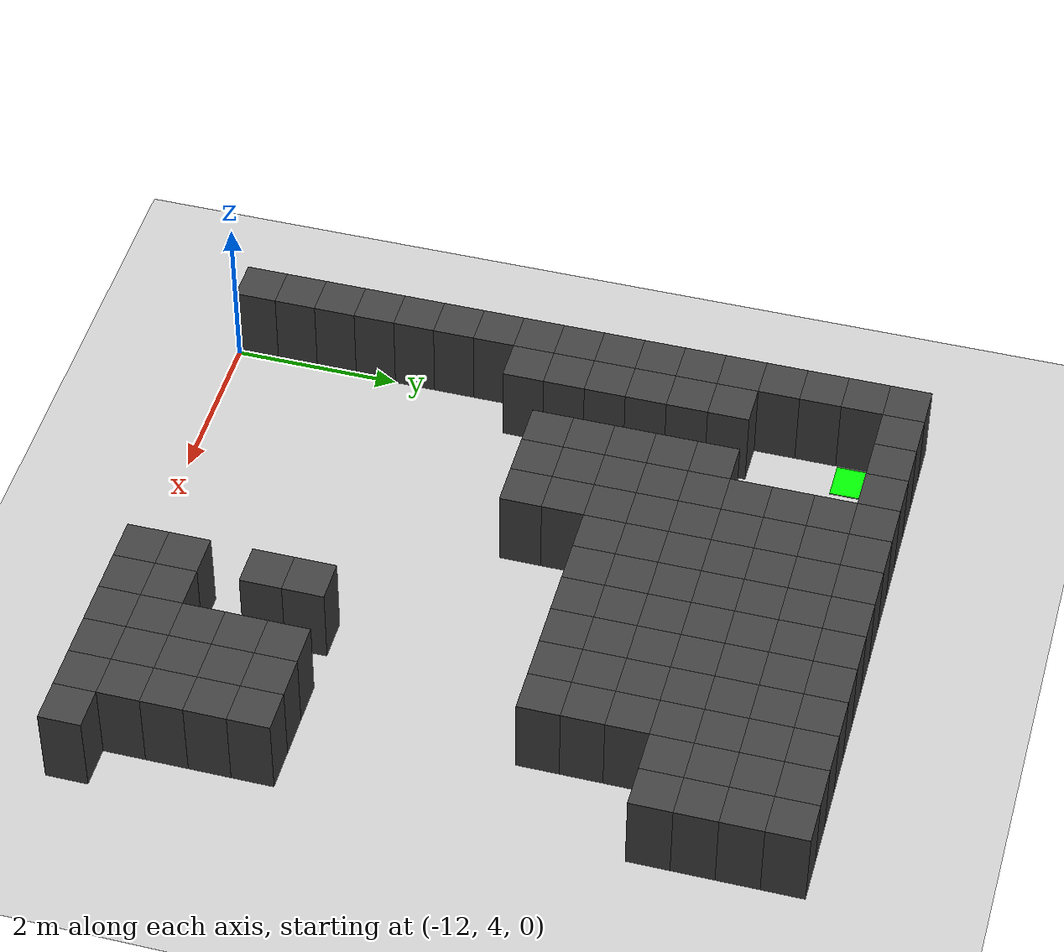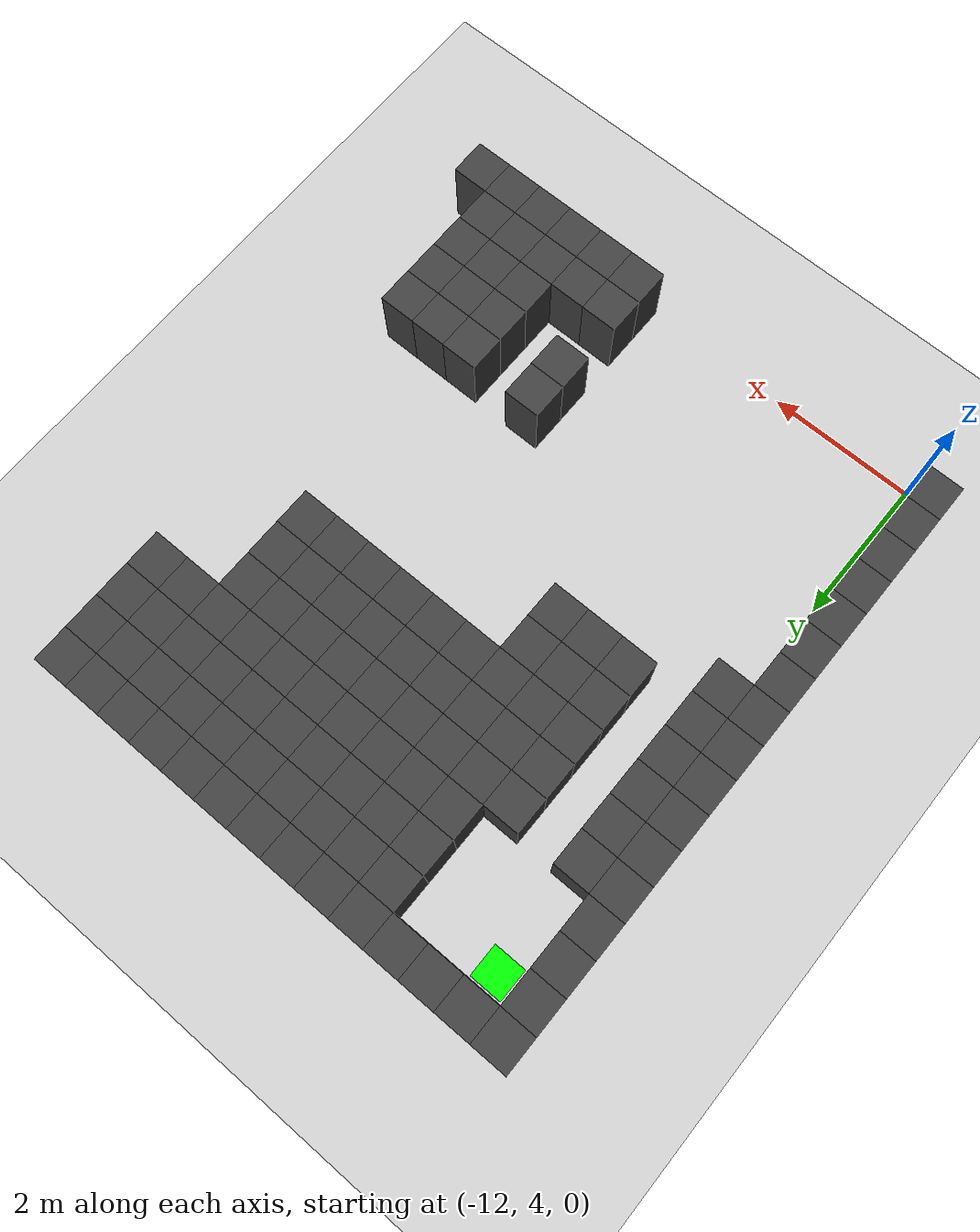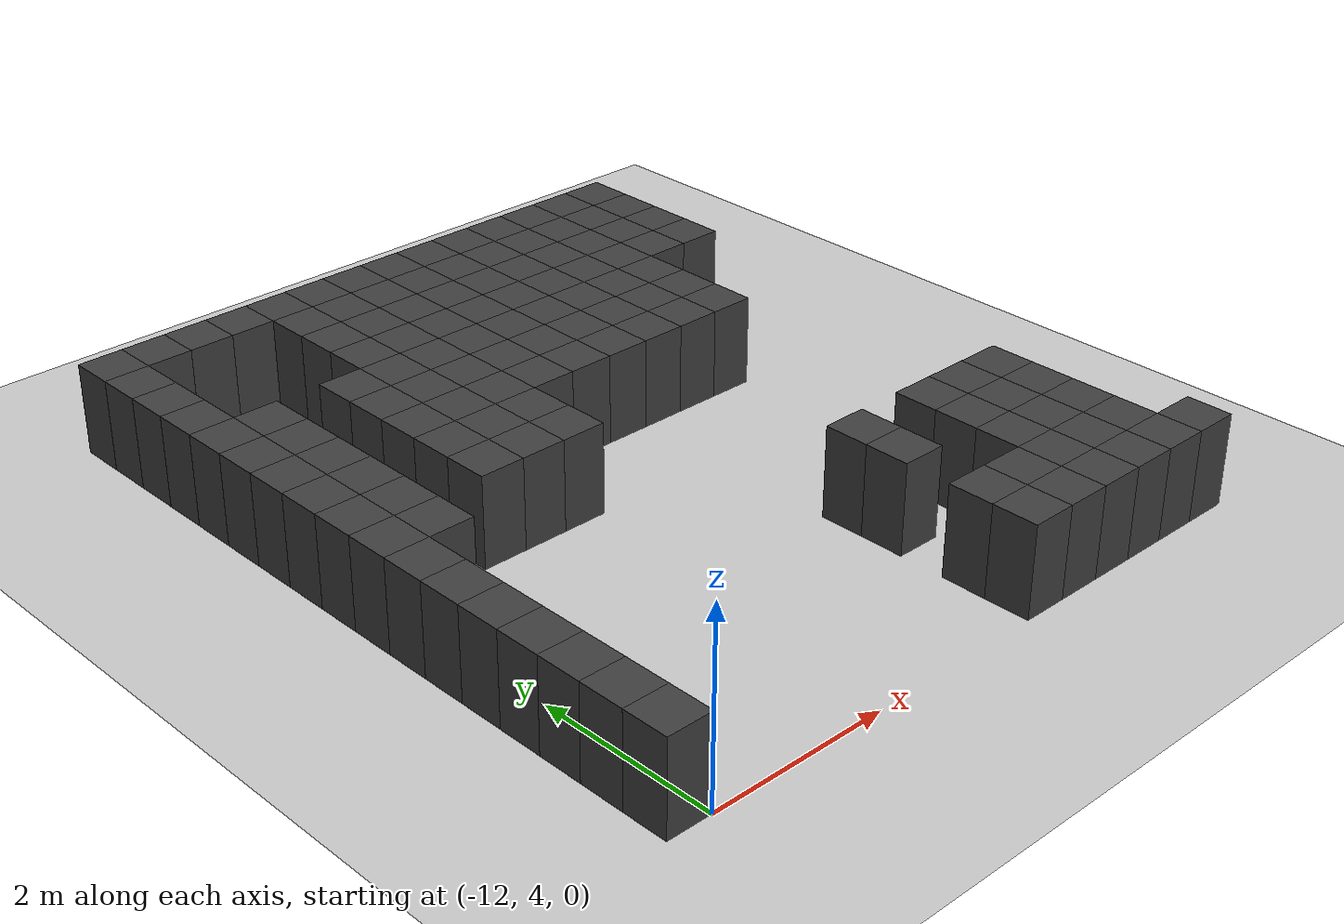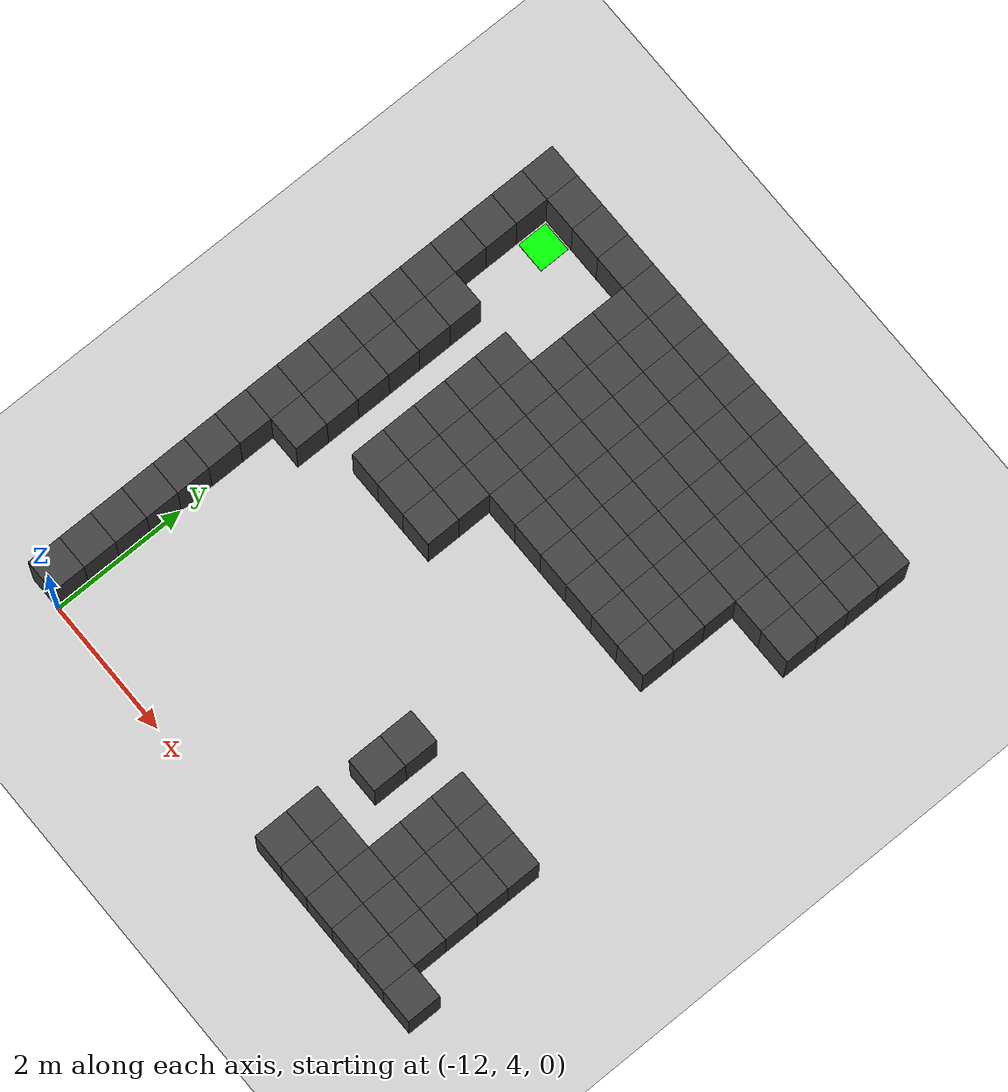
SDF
<sdf version="1.7">
 <world name="map_14547">
  <model name="ground_plane">
   <static>true</static>
   <link name="link">
    <collision name="collision">
     <geometry><plane><normal>0 0 1</normal><size>200 200</size></plane></geometry>
    </collision>
    <visual name="visual">
     <geometry><plane><normal>0 0 1</normal><size>200 200</size></plane></geometry>
     <material><ambient>0.8 0.8 0.8 1</ambient><diffuse>0.8 0.8 0.8 1</diffuse></material>
    </visual>
   </link>
  </model>
  <model name="maze_environment">
   <static>true</static>
   <link name="wall_0">
    <pose>-12.250 12.250 0.500 0 0 0</pose>
    <collision name="col"><geometry><box><size>0.5 0.5 1.0</size></box></geometry></collision>
    <visual name="vis">
     <geometry><box><size>0.5 0.5 1.0</size></box></geometry>
     <material><ambient>0.15 0.15 0.15 1</ambient><diffuse>0.25 0.25 0.25 1</diffuse></material>
    </visual>
   </link>
   <link name="wall_1">
    <pose>-11.750 12.250 0.500 0 0 0</pose>
    <collision name="col"><geometry><box><size>0.5 0.5 1.0</size></box></geometry></collision>
    <visual name="vis">
     <geometry><box><size>0.5 0.5 1.0</size></box></geometry>
     <material><ambient>0.15 0.15 0.15 1</ambient><diffuse>0.25 0.25 0.25 1</diffuse></material>
    </visual>
   </link>
   <link name="wall_2">
    <pose>-11.250 12.250 0.500 0 0 0</pose>
    <collision name="col"><geometry><box><size>0.5 0.5 1.0</size></box></geometry></collision>
    <visual name="vis">
     <geometry><box><size>0.5 0.5 1.0</size></box></geometry>
     <material><ambient>0.15 0.15 0.15 1</ambient><diffuse>0.25 0.25 0.25 1</diffuse></material>
    </visual>
   </link>
   <link name="wall_3">
    <pose>-10.750 12.250 0.500 0 0 0</pose>
    <collision name="col"><geometry><box><size>0.5 0.5 1.0</size></box></geometry></collision>
    <visual name="vis">
     <geometry><box><size>0.5 0.5 1.0</size></box></geometry>
     <material><ambient>0.15 0.15 0.15 1</ambient><diffuse>0.25 0.25 0.25 1</diffuse></material>
    </visual>
   </link>
   <link name="wall_4">
    <pose>-10.250 12.250 0.500 0 0 0</pose>
    <collision name="col"><geometry><box><size>0.5 0.5 1.0</size></box></geometry></collision>
    <visual name="vis">
     <geometry><box><size>0.5 0.5 1.0</size></box></geometry>
     <material><ambient>0.15 0.15 0.15 1</ambient><diffuse>0.25 0.25 0.25 1</diffuse></material>
    </visual>
   </link>
   <link name="wall_5">
    <pose>-9.750 12.250 0.500 0 0 0</pose>
    <collision name="col"><geometry><box><size>0.5 0.5 1.0</size></box></geometry></collision>
    <visual name="vis">
     <geometry><box><size>0.5 0.5 1.0</size></box></geometry>
     <material><ambient>0.15 0.15 0.15 1</ambient><diffuse>0.25 0.25 0.25 1</diffuse></material>
    </visual>
   </link>
   <link name="wall_6">
    <pose>-9.250 12.250 0.500 0 0 0</pose>
    <collision name="col"><geometry><box><size>0.5 0.5 1.0</size></box></geometry></collision>
    <visual name="vis">
     <geometry><box><size>0.5 0.5 1.0</size></box></geometry>
     <material><ambient>0.15 0.15 0.15 1</ambient><diffuse>0.25 0.25 0.25 1</diffuse></material>
    </visual>
   </link>
   <link name="wall_7">
    <pose>-8.750 12.250 0.500 0 0 0</pose>
    <collision name="col"><geometry><box><size>0.5 0.5 1.0</size></box></geometry></collision>
    <visual name="vis">
     <geometry><box><size>0.5 0.5 1.0</size></box></geometry>
     <material><ambient>0.15 0.15 0.15 1</ambient><diffuse>0.25 0.25 0.25 1</diffuse></material>
    </visual>
   </link>
   <link name="wall_8">
    <pose>-8.250 12.250 0.500 0 0 0</pose>
    <collision name="col"><geometry><box><size>0.5 0.5 1.0</size></box></geometry></collision>
    <visual name="vis">
     <geometry><box><size>0.5 0.5 1.0</size></box></geometry>
     <material><ambient>0.15 0.15 0.15 1</ambient><diffuse>0.25 0.25 0.25 1</diffuse></material>
    </visual>
   </link>
   <link name="wall_9">
    <pose>-7.750 12.250 0.500 0 0 0</pose>
    <collision name="col"><geometry><box><size>0.5 0.5 1.0</size></box></geometry></collision>
    <visual name="vis">
     <geometry><box><size>0.5 0.5 1.0</size></box></geometry>
     <material><ambient>0.15 0.15 0.15 1</ambient><diffuse>0.25 0.25 0.25 1</diffuse></material>
    </visual>
   </link>
   <link name="wall_10">
    <pose>-7.250 12.250 0.500 0 0 0</pose>
    <collision name="col"><geometry><box><size>0.5 0.5 1.0</size></box></geometry></collision>
    <visual name="vis">
     <geometry><box><size>0.5 0.5 1.0</size></box></geometry>
     <material><ambient>0.15 0.15 0.15 1</ambient><diffuse>0.25 0.25 0.25 1</diffuse></material>
    </visual>
   </link>
   <link name="wall_11">
    <pose>-6.750 12.250 0.500 0 0 0</pose>
    <collision name="col"><geometry><box><size>0.5 0.5 1.0</size></box></geometry></collision>
    <visual name="vis">
     <geometry><box><size>0.5 0.5 1.0</size></box></geometry>
     <material><ambient>0.15 0.15 0.15 1</ambient><diffuse>0.25 0.25 0.25 1</diffuse></material>
    </visual>
   </link>
   <link name="wall_12">
    <pose>-6.250 12.250 0.500 0 0 0</pose>
    <collision name="col"><geometry><box><size>0.5 0.5 1.0</size></box></geometry></collision>
    <visual name="vis">
     <geometry><box><size>0.5 0.5 1.0</size></box></geometry>
     <material><ambient>0.15 0.15 0.15 1</ambient><diffuse>0.25 0.25 0.25 1</diffuse></material>
    </visual>
   </link>
   <link name="wall_13">
    <pose>-5.750 12.250 0.500 0 0 0</pose>
    <collision name="col"><geometry><box><size>0.5 0.5 1.0</size></box></geometry></collision>
    <visual name="vis">
     <geometry><box><size>0.5 0.5 1.0</size></box></geometry>
     <material><ambient>0.15 0.15 0.15 1</ambient><diffuse>0.25 0.25 0.25 1</diffuse></material>
    </visual>
   </link>
   <link name="wall_50">
    <pose>-12.250 11.750 0.500 0 0 0</pose>
    <collision name="col"><geometry><box><size>0.5 0.5 1.0</size></box></geometry></collision>
    <visual name="vis">
     <geometry><box><size>0.5 0.5 1.0</size></box></geometry>
     <material><ambient>0.15 0.15 0.15 1</ambient><diffuse>0.25 0.25 0.25 1</diffuse></material>
    </visual>
   </link>
   <link name="wall_51">
    <pose>-10.250 11.750 0.500 0 0 0</pose>
    <collision name="col"><geometry><box><size>0.5 0.5 1.0</size></box></geometry></collision>
    <visual name="vis">
     <geometry><box><size>0.5 0.5 1.0</size></box></geometry>
     <material><ambient>0.15 0.15 0.15 1</ambient><diffuse>0.25 0.25 0.25 1</diffuse></material>
    </visual>
   </link>
   <link name="wall_52">
    <pose>-9.750 11.750 0.500 0 0 0</pose>
    <collision name="col"><geometry><box><size>0.5 0.5 1.0</size></box></geometry></collision>
    <visual name="vis">
     <geometry><box><size>0.5 0.5 1.0</size></box></geometry>
     <material><ambient>0.15 0.15 0.15 1</ambient><diffuse>0.25 0.25 0.25 1</diffuse></material>
    </visual>
   </link>
   <link name="wall_53">
    <pose>-9.250 11.750 0.500 0 0 0</pose>
    <collision name="col"><geometry><box><size>0.5 0.5 1.0</size></box></geometry></collision>
    <visual name="vis">
     <geometry><box><size>0.5 0.5 1.0</size></box></geometry>
     <material><ambient>0.15 0.15 0.15 1</ambient><diffuse>0.25 0.25 0.25 1</diffuse></material>
    </visual>
   </link>
   <link name="wall_54">
    <pose>-8.750 11.750 0.500 0 0 0</pose>
    <collision name="col"><geometry><box><size>0.5 0.5 1.0</size></box></geometry></collision>
    <visual name="vis">
     <geometry><box><size>0.5 0.5 1.0</size></box></geometry>
     <material><ambient>0.15 0.15 0.15 1</ambient><diffuse>0.25 0.25 0.25 1</diffuse></material>
    </visual>
   </link>
   <link name="wall_55">
    <pose>-8.250 11.750 0.500 0 0 0</pose>
    <collision name="col"><geometry><box><size>0.5 0.5 1.0</size></box></geometry></collision>
    <visual name="vis">
     <geometry><box><size>0.5 0.5 1.0</size></box></geometry>
     <material><ambient>0.15 0.15 0.15 1</ambient><diffuse>0.25 0.25 0.25 1</diffuse></material>
    </visual>
   </link>
   <link name="wall_56">
    <pose>-7.750 11.750 0.500 0 0 0</pose>
    <collision name="col"><geometry><box><size>0.5 0.5 1.0</size></box></geometry></collision>
    <visual name="vis">
     <geometry><box><size>0.5 0.5 1.0</size></box></geometry>
     <material><ambient>0.15 0.15 0.15 1</ambient><diffuse>0.25 0.25 0.25 1</diffuse></material>
    </visual>
   </link>
   <link name="wall_57">
    <pose>-7.250 11.750 0.500 0 0 0</pose>
    <collision name="col"><geometry><box><size>0.5 0.5 1.0</size></box></geometry></collision>
    <visual name="vis">
     <geometry><box><size>0.5 0.5 1.0</size></box></geometry>
     <material><ambient>0.15 0.15 0.15 1</ambient><diffuse>0.25 0.25 0.25 1</diffuse></material>
    </visual>
   </link>
   <link name="wall_58">
    <pose>-6.750 11.750 0.500 0 0 0</pose>
    <collision name="col"><geometry><box><size>0.5 0.5 1.0</size></box></geometry></collision>
    <visual name="vis">
     <geometry><box><size>0.5 0.5 1.0</size></box></geometry>
     <material><ambient>0.15 0.15 0.15 1</ambient><diffuse>0.25 0.25 0.25 1</diffuse></material>
    </visual>
   </link>
   <link name="wall_59">
    <pose>-6.250 11.750 0.500 0 0 0</pose>
    <collision name="col"><geometry><box><size>0.5 0.5 1.0</size></box></geometry></collision>
    <visual name="vis">
     <geometry><box><size>0.5 0.5 1.0</size></box></geometry>
     <material><ambient>0.15 0.15 0.15 1</ambient><diffuse>0.25 0.25 0.25 1</diffuse></material>
    </visual>
   </link>
   <link name="wall_60">
    <pose>-5.750 11.750 0.500 0 0 0</pose>
    <collision name="col"><geometry><box><size>0.5 0.5 1.0</size></box></geometry></collision>
    <visual name="vis">
     <geometry><box><size>0.5 0.5 1.0</size></box></geometry>
     <material><ambient>0.15 0.15 0.15 1</ambient><diffuse>0.25 0.25 0.25 1</diffuse></material>
    </visual>
   </link>
   <link name="wall_90">
    <pose>-12.250 11.250 0.500 0 0 0</pose>
    <collision name="col"><geometry><box><size>0.5 0.5 1.0</size></box></geometry></collision>
    <visual name="vis">
     <geometry><box><size>0.5 0.5 1.0</size></box></geometry>
     <material><ambient>0.15 0.15 0.15 1</ambient><diffuse>0.25 0.25 0.25 1</diffuse></material>
    </visual>
   </link>
   <link name="wall_91">
    <pose>-10.250 11.250 0.500 0 0 0</pose>
    <collision name="col"><geometry><box><size>0.5 0.5 1.0</size></box></geometry></collision>
    <visual name="vis">
     <geometry><box><size>0.5 0.5 1.0</size></box></geometry>
     <material><ambient>0.15 0.15 0.15 1</ambient><diffuse>0.25 0.25 0.25 1</diffuse></material>
    </visual>
   </link>
   <link name="wall_92">
    <pose>-9.750 11.250 0.500 0 0 0</pose>
    <collision name="col"><geometry><box><size>0.5 0.5 1.0</size></box></geometry></collision>
    <visual name="vis">
     <geometry><box><size>0.5 0.5 1.0</size></box></geometry>
     <material><ambient>0.15 0.15 0.15 1</ambient><diffuse>0.25 0.25 0.25 1</diffuse></material>
    </visual>
   </link>
   <link name="wall_93">
    <pose>-9.250 11.250 0.500 0 0 0</pose>
    <collision name="col"><geometry><box><size>0.5 0.5 1.0</size></box></geometry></collision>
    <visual name="vis">
     <geometry><box><size>0.5 0.5 1.0</size></box></geometry>
     <material><ambient>0.15 0.15 0.15 1</ambient><diffuse>0.25 0.25 0.25 1</diffuse></material>
    </visual>
   </link>
   <link name="wall_94">
    <pose>-8.750 11.250 0.500 0 0 0</pose>
    <collision name="col"><geometry><box><size>0.5 0.5 1.0</size></box></geometry></collision>
    <visual name="vis">
     <geometry><box><size>0.5 0.5 1.0</size></box></geometry>
     <material><ambient>0.15 0.15 0.15 1</ambient><diffuse>0.25 0.25 0.25 1</diffuse></material>
    </visual>
   </link>
   <link name="wall_95">
    <pose>-8.250 11.250 0.500 0 0 0</pose>
    <collision name="col"><geometry><box><size>0.5 0.5 1.0</size></box></geometry></collision>
    <visual name="vis">
     <geometry><box><size>0.5 0.5 1.0</size></box></geometry>
     <material><ambient>0.15 0.15 0.15 1</ambient><diffuse>0.25 0.25 0.25 1</diffuse></material>
    </visual>
   </link>
   <link name="wall_96">
    <pose>-7.750 11.250 0.500 0 0 0</pose>
    <collision name="col"><geometry><box><size>0.5 0.5 1.0</size></box></geometry></collision>
    <visual name="vis">
     <geometry><box><size>0.5 0.5 1.0</size></box></geometry>
     <material><ambient>0.15 0.15 0.15 1</ambient><diffuse>0.25 0.25 0.25 1</diffuse></material>
    </visual>
   </link>
   <link name="wall_97">
    <pose>-7.250 11.250 0.500 0 0 0</pose>
    <collision name="col"><geometry><box><size>0.5 0.5 1.0</size></box></geometry></collision>
    <visual name="vis">
     <geometry><box><size>0.5 0.5 1.0</size></box></geometry>
     <material><ambient>0.15 0.15 0.15 1</ambient><diffuse>0.25 0.25 0.25 1</diffuse></material>
    </visual>
   </link>
   <link name="wall_98">
    <pose>-6.750 11.250 0.500 0 0 0</pose>
    <collision name="col"><geometry><box><size>0.5 0.5 1.0</size></box></geometry></collision>
    <visual name="vis">
     <geometry><box><size>0.5 0.5 1.0</size></box></geometry>
     <material><ambient>0.15 0.15 0.15 1</ambient><diffuse>0.25 0.25 0.25 1</diffuse></material>
    </visual>
   </link>
   <link name="wall_99">
    <pose>-6.250 11.250 0.500 0 0 0</pose>
    <collision name="col"><geometry><box><size>0.5 0.5 1.0</size></box></geometry></collision>
    <visual name="vis">
     <geometry><box><size>0.5 0.5 1.0</size></box></geometry>
     <material><ambient>0.15 0.15 0.15 1</ambient><diffuse>0.25 0.25 0.25 1</diffuse></material>
    </visual>
   </link>
   <link name="wall_100">
    <pose>-5.750 11.250 0.500 0 0 0</pose>
    <collision name="col"><geometry><box><size>0.5 0.5 1.0</size></box></geometry></collision>
    <visual name="vis">
     <geometry><box><size>0.5 0.5 1.0</size></box></geometry>
     <material><ambient>0.15 0.15 0.15 1</ambient><diffuse>0.25 0.25 0.25 1</diffuse></material>
    </visual>
   </link>
   <link name="wall_122">
    <pose>-12.250 10.750 0.500 0 0 0</pose>
    <collision name="col"><geometry><box><size>0.5 0.5 1.0</size></box></geometry></collision>
    <visual name="vis">
     <geometry><box><size>0.5 0.5 1.0</size></box></geometry>
     <material><ambient>0.15 0.15 0.15 1</ambient><diffuse>0.25 0.25 0.25 1</diffuse></material>
    </visual>
   </link>
   <link name="wall_123">
    <pose>-10.250 10.750 0.500 0 0 0</pose>
    <collision name="col"><geometry><box><size>0.5 0.5 1.0</size></box></geometry></collision>
    <visual name="vis">
     <geometry><box><size>0.5 0.5 1.0</size></box></geometry>
     <material><ambient>0.15 0.15 0.15 1</ambient><diffuse>0.25 0.25 0.25 1</diffuse></material>
    </visual>
   </link>
   <link name="wall_124">
    <pose>-9.750 10.750 0.500 0 0 0</pose>
    <collision name="col"><geometry><box><size>0.5 0.5 1.0</size></box></geometry></collision>
    <visual name="vis">
     <geometry><box><size>0.5 0.5 1.0</size></box></geometry>
     <material><ambient>0.15 0.15 0.15 1</ambient><diffuse>0.25 0.25 0.25 1</diffuse></material>
    </visual>
   </link>
   <link name="wall_125">
    <pose>-9.250 10.750 0.500 0 0 0</pose>
    <collision name="col"><geometry><box><size>0.5 0.5 1.0</size></box></geometry></collision>
    <visual name="vis">
     <geometry><box><size>0.5 0.5 1.0</size></box></geometry>
     <material><ambient>0.15 0.15 0.15 1</ambient><diffuse>0.25 0.25 0.25 1</diffuse></material>
    </visual>
   </link>
   <link name="wall_126">
    <pose>-8.750 10.750 0.500 0 0 0</pose>
    <collision name="col"><geometry><box><size>0.5 0.5 1.0</size></box></geometry></collision>
    <visual name="vis">
     <geometry><box><size>0.5 0.5 1.0</size></box></geometry>
     <material><ambient>0.15 0.15 0.15 1</ambient><diffuse>0.25 0.25 0.25 1</diffuse></material>
    </visual>
   </link>
   <link name="wall_127">
    <pose>-8.250 10.750 0.500 0 0 0</pose>
    <collision name="col"><geometry><box><size>0.5 0.5 1.0</size></box></geometry></collision>
    <visual name="vis">
     <geometry><box><size>0.5 0.5 1.0</size></box></geometry>
     <material><ambient>0.15 0.15 0.15 1</ambient><diffuse>0.25 0.25 0.25 1</diffuse></material>
    </visual>
   </link>
   <link name="wall_128">
    <pose>-7.750 10.750 0.500 0 0 0</pose>
    <collision name="col"><geometry><box><size>0.5 0.5 1.0</size></box></geometry></collision>
    <visual name="vis">
     <geometry><box><size>0.5 0.5 1.0</size></box></geometry>
     <material><ambient>0.15 0.15 0.15 1</ambient><diffuse>0.25 0.25 0.25 1</diffuse></material>
    </visual>
   </link>
   <link name="wall_129">
    <pose>-7.250 10.750 0.500 0 0 0</pose>
    <collision name="col"><geometry><box><size>0.5 0.5 1.0</size></box></geometry></collision>
    <visual name="vis">
     <geometry><box><size>0.5 0.5 1.0</size></box></geometry>
     <material><ambient>0.15 0.15 0.15 1</ambient><diffuse>0.25 0.25 0.25 1</diffuse></material>
    </visual>
   </link>
   <link name="wall_130">
    <pose>-6.750 10.750 0.500 0 0 0</pose>
    <collision name="col"><geometry><box><size>0.5 0.5 1.0</size></box></geometry></collision>
    <visual name="vis">
     <geometry><box><size>0.5 0.5 1.0</size></box></geometry>
     <material><ambient>0.15 0.15 0.15 1</ambient><diffuse>0.25 0.25 0.25 1</diffuse></material>
    </visual>
   </link>
   <link name="wall_131">
    <pose>-6.250 10.750 0.500 0 0 0</pose>
    <collision name="col"><geometry><box><size>0.5 0.5 1.0</size></box></geometry></collision>
    <visual name="vis">
     <geometry><box><size>0.5 0.5 1.0</size></box></geometry>
     <material><ambient>0.15 0.15 0.15 1</ambient><diffuse>0.25 0.25 0.25 1</diffuse></material>
    </visual>
   </link>
   <link name="wall_132">
    <pose>-5.750 10.750 0.500 0 0 0</pose>
    <collision name="col"><geometry><box><size>0.5 0.5 1.0</size></box></geometry></collision>
    <visual name="vis">
     <geometry><box><size>0.5 0.5 1.0</size></box></geometry>
     <material><ambient>0.15 0.15 0.15 1</ambient><diffuse>0.25 0.25 0.25 1</diffuse></material>
    </visual>
   </link>
   <link name="wall_154">
    <pose>-12.250 10.250 0.500 0 0 0</pose>
    <collision name="col"><geometry><box><size>0.5 0.5 1.0</size></box></geometry></collision>
    <visual name="vis">
     <geometry><box><size>0.5 0.5 1.0</size></box></geometry>
     <material><ambient>0.15 0.15 0.15 1</ambient><diffuse>0.25 0.25 0.25 1</diffuse></material>
    </visual>
   </link>
   <link name="wall_155">
    <pose>-11.750 10.250 0.500 0 0 0</pose>
    <collision name="col"><geometry><box><size>0.5 0.5 1.0</size></box></geometry></collision>
    <visual name="vis">
     <geometry><box><size>0.5 0.5 1.0</size></box></geometry>
     <material><ambient>0.15 0.15 0.15 1</ambient><diffuse>0.25 0.25 0.25 1</diffuse></material>
    </visual>
   </link>
   <link name="wall_156">
    <pose>-10.750 10.250 0.500 0 0 0</pose>
    <collision name="col"><geometry><box><size>0.5 0.5 1.0</size></box></geometry></collision>
    <visual name="vis">
     <geometry><box><size>0.5 0.5 1.0</size></box></geometry>
     <material><ambient>0.15 0.15 0.15 1</ambient><diffuse>0.25 0.25 0.25 1</diffuse></material>
    </visual>
   </link>
   <link name="wall_157">
    <pose>-10.250 10.250 0.500 0 0 0</pose>
    <collision name="col"><geometry><box><size>0.5 0.5 1.0</size></box></geometry></collision>
    <visual name="vis">
     <geometry><box><size>0.5 0.5 1.0</size></box></geometry>
     <material><ambient>0.15 0.15 0.15 1</ambient><diffuse>0.25 0.25 0.25 1</diffuse></material>
    </visual>
   </link>
   <link name="wall_158">
    <pose>-9.750 10.250 0.500 0 0 0</pose>
    <collision name="col"><geometry><box><size>0.5 0.5 1.0</size></box></geometry></collision>
    <visual name="vis">
     <geometry><box><size>0.5 0.5 1.0</size></box></geometry>
     <material><ambient>0.15 0.15 0.15 1</ambient><diffuse>0.25 0.25 0.25 1</diffuse></material>
    </visual>
   </link>
   <link name="wall_159">
    <pose>-9.250 10.250 0.500 0 0 0</pose>
    <collision name="col"><geometry><box><size>0.5 0.5 1.0</size></box></geometry></collision>
    <visual name="vis">
     <geometry><box><size>0.5 0.5 1.0</size></box></geometry>
     <material><ambient>0.15 0.15 0.15 1</ambient><diffuse>0.25 0.25 0.25 1</diffuse></material>
    </visual>
   </link>
   <link name="wall_160">
    <pose>-8.750 10.250 0.500 0 0 0</pose>
    <collision name="col"><geometry><box><size>0.5 0.5 1.0</size></box></geometry></collision>
    <visual name="vis">
     <geometry><box><size>0.5 0.5 1.0</size></box></geometry>
     <material><ambient>0.15 0.15 0.15 1</ambient><diffuse>0.25 0.25 0.25 1</diffuse></material>
    </visual>
   </link>
   <link name="wall_161">
    <pose>-8.250 10.250 0.500 0 0 0</pose>
    <collision name="col"><geometry><box><size>0.5 0.5 1.0</size></box></geometry></collision>
    <visual name="vis">
     <geometry><box><size>0.5 0.5 1.0</size></box></geometry>
     <material><ambient>0.15 0.15 0.15 1</ambient><diffuse>0.25 0.25 0.25 1</diffuse></material>
    </visual>
   </link>
   <link name="wall_162">
    <pose>-7.750 10.250 0.500 0 0 0</pose>
    <collision name="col"><geometry><box><size>0.5 0.5 1.0</size></box></geometry></collision>
    <visual name="vis">
     <geometry><box><size>0.5 0.5 1.0</size></box></geometry>
     <material><ambient>0.15 0.15 0.15 1</ambient><diffuse>0.25 0.25 0.25 1</diffuse></material>
    </visual>
   </link>
   <link name="wall_163">
    <pose>-7.250 10.250 0.500 0 0 0</pose>
    <collision name="col"><geometry><box><size>0.5 0.5 1.0</size></box></geometry></collision>
    <visual name="vis">
     <geometry><box><size>0.5 0.5 1.0</size></box></geometry>
     <material><ambient>0.15 0.15 0.15 1</ambient><diffuse>0.25 0.25 0.25 1</diffuse></material>
    </visual>
   </link>
   <link name="wall_164">
    <pose>-6.750 10.250 0.500 0 0 0</pose>
    <collision name="col"><geometry><box><size>0.5 0.5 1.0</size></box></geometry></collision>
    <visual name="vis">
     <geometry><box><size>0.5 0.5 1.0</size></box></geometry>
     <material><ambient>0.15 0.15 0.15 1</ambient><diffuse>0.25 0.25 0.25 1</diffuse></material>
    </visual>
   </link>
   <link name="wall_183">
    <pose>-12.250 9.750 0.500 0 0 0</pose>
    <collision name="col"><geometry><box><size>0.5 0.5 1.0</size></box></geometry></collision>
    <visual name="vis">
     <geometry><box><size>0.5 0.5 1.0</size></box></geometry>
     <material><ambient>0.15 0.15 0.15 1</ambient><diffuse>0.25 0.25 0.25 1</diffuse></material>
    </visual>
   </link>
   <link name="wall_184">
    <pose>-11.750 9.750 0.500 0 0 0</pose>
    <collision name="col"><geometry><box><size>0.5 0.5 1.0</size></box></geometry></collision>
    <visual name="vis">
     <geometry><box><size>0.5 0.5 1.0</size></box></geometry>
     <material><ambient>0.15 0.15 0.15 1</ambient><diffuse>0.25 0.25 0.25 1</diffuse></material>
    </visual>
   </link>
   <link name="wall_185">
    <pose>-10.750 9.750 0.500 0 0 0</pose>
    <collision name="col"><geometry><box><size>0.5 0.5 1.0</size></box></geometry></collision>
    <visual name="vis">
     <geometry><box><size>0.5 0.5 1.0</size></box></geometry>
     <material><ambient>0.15 0.15 0.15 1</ambient><diffuse>0.25 0.25 0.25 1</diffuse></material>
    </visual>
   </link>
   <link name="wall_186">
    <pose>-10.250 9.750 0.500 0 0 0</pose>
    <collision name="col"><geometry><box><size>0.5 0.5 1.0</size></box></geometry></collision>
    <visual name="vis">
     <geometry><box><size>0.5 0.5 1.0</size></box></geometry>
     <material><ambient>0.15 0.15 0.15 1</ambient><diffuse>0.25 0.25 0.25 1</diffuse></material>
    </visual>
   </link>
   <link name="wall_187">
    <pose>-9.750 9.750 0.500 0 0 0</pose>
    <collision name="col"><geometry><box><size>0.5 0.5 1.0</size></box></geometry></collision>
    <visual name="vis">
     <geometry><box><size>0.5 0.5 1.0</size></box></geometry>
     <material><ambient>0.15 0.15 0.15 1</ambient><diffuse>0.25 0.25 0.25 1</diffuse></material>
    </visual>
   </link>
   <link name="wall_188">
    <pose>-9.250 9.750 0.500 0 0 0</pose>
    <collision name="col"><geometry><box><size>0.5 0.5 1.0</size></box></geometry></collision>
    <visual name="vis">
     <geometry><box><size>0.5 0.5 1.0</size></box></geometry>
     <material><ambient>0.15 0.15 0.15 1</ambient><diffuse>0.25 0.25 0.25 1</diffuse></material>
    </visual>
   </link>
   <link name="wall_189">
    <pose>-8.750 9.750 0.500 0 0 0</pose>
    <collision name="col"><geometry><box><size>0.5 0.5 1.0</size></box></geometry></collision>
    <visual name="vis">
     <geometry><box><size>0.5 0.5 1.0</size></box></geometry>
     <material><ambient>0.15 0.15 0.15 1</ambient><diffuse>0.25 0.25 0.25 1</diffuse></material>
    </visual>
   </link>
   <link name="wall_190">
    <pose>-8.250 9.750 0.500 0 0 0</pose>
    <collision name="col"><geometry><box><size>0.5 0.5 1.0</size></box></geometry></collision>
    <visual name="vis">
     <geometry><box><size>0.5 0.5 1.0</size></box></geometry>
     <material><ambient>0.15 0.15 0.15 1</ambient><diffuse>0.25 0.25 0.25 1</diffuse></material>
    </visual>
   </link>
   <link name="wall_191">
    <pose>-7.750 9.750 0.500 0 0 0</pose>
    <collision name="col"><geometry><box><size>0.5 0.5 1.0</size></box></geometry></collision>
    <visual name="vis">
     <geometry><box><size>0.5 0.5 1.0</size></box></geometry>
     <material><ambient>0.15 0.15 0.15 1</ambient><diffuse>0.25 0.25 0.25 1</diffuse></material>
    </visual>
   </link>
   <link name="wall_192">
    <pose>-7.250 9.750 0.500 0 0 0</pose>
    <collision name="col"><geometry><box><size>0.5 0.5 1.0</size></box></geometry></collision>
    <visual name="vis">
     <geometry><box><size>0.5 0.5 1.0</size></box></geometry>
     <material><ambient>0.15 0.15 0.15 1</ambient><diffuse>0.25 0.25 0.25 1</diffuse></material>
    </visual>
   </link>
   <link name="wall_193">
    <pose>-6.750 9.750 0.500 0 0 0</pose>
    <collision name="col"><geometry><box><size>0.5 0.5 1.0</size></box></geometry></collision>
    <visual name="vis">
     <geometry><box><size>0.5 0.5 1.0</size></box></geometry>
     <material><ambient>0.15 0.15 0.15 1</ambient><diffuse>0.25 0.25 0.25 1</diffuse></material>
    </visual>
   </link>
   <link name="wall_212">
    <pose>-12.250 9.250 0.500 0 0 0</pose>
    <collision name="col"><geometry><box><size>0.5 0.5 1.0</size></box></geometry></collision>
    <visual name="vis">
     <geometry><box><size>0.5 0.5 1.0</size></box></geometry>
     <material><ambient>0.15 0.15 0.15 1</ambient><diffuse>0.25 0.25 0.25 1</diffuse></material>
    </visual>
   </link>
   <link name="wall_213">
    <pose>-11.750 9.250 0.500 0 0 0</pose>
    <collision name="col"><geometry><box><size>0.5 0.5 1.0</size></box></geometry></collision>
    <visual name="vis">
     <geometry><box><size>0.5 0.5 1.0</size></box></geometry>
     <material><ambient>0.15 0.15 0.15 1</ambient><diffuse>0.25 0.25 0.25 1</diffuse></material>
    </visual>
   </link>
   <link name="wall_214">
    <pose>-10.750 9.250 0.500 0 0 0</pose>
    <collision name="col"><geometry><box><size>0.5 0.5 1.0</size></box></geometry></collision>
    <visual name="vis">
     <geometry><box><size>0.5 0.5 1.0</size></box></geometry>
     <material><ambient>0.15 0.15 0.15 1</ambient><diffuse>0.25 0.25 0.25 1</diffuse></material>
    </visual>
   </link>
   <link name="wall_215">
    <pose>-10.250 9.250 0.500 0 0 0</pose>
    <collision name="col"><geometry><box><size>0.5 0.5 1.0</size></box></geometry></collision>
    <visual name="vis">
     <geometry><box><size>0.5 0.5 1.0</size></box></geometry>
     <material><ambient>0.15 0.15 0.15 1</ambient><diffuse>0.25 0.25 0.25 1</diffuse></material>
    </visual>
   </link>
   <link name="wall_216">
    <pose>-9.750 9.250 0.500 0 0 0</pose>
    <collision name="col"><geometry><box><size>0.5 0.5 1.0</size></box></geometry></collision>
    <visual name="vis">
     <geometry><box><size>0.5 0.5 1.0</size></box></geometry>
     <material><ambient>0.15 0.15 0.15 1</ambient><diffuse>0.25 0.25 0.25 1</diffuse></material>
    </visual>
   </link>
   <link name="wall_217">
    <pose>-9.250 9.250 0.500 0 0 0</pose>
    <collision name="col"><geometry><box><size>0.5 0.5 1.0</size></box></geometry></collision>
    <visual name="vis">
     <geometry><box><size>0.5 0.5 1.0</size></box></geometry>
     <material><ambient>0.15 0.15 0.15 1</ambient><diffuse>0.25 0.25 0.25 1</diffuse></material>
    </visual>
   </link>
   <link name="wall_218">
    <pose>-8.750 9.250 0.500 0 0 0</pose>
    <collision name="col"><geometry><box><size>0.5 0.5 1.0</size></box></geometry></collision>
    <visual name="vis">
     <geometry><box><size>0.5 0.5 1.0</size></box></geometry>
     <material><ambient>0.15 0.15 0.15 1</ambient><diffuse>0.25 0.25 0.25 1</diffuse></material>
    </visual>
   </link>
   <link name="wall_219">
    <pose>-8.250 9.250 0.500 0 0 0</pose>
    <collision name="col"><geometry><box><size>0.5 0.5 1.0</size></box></geometry></collision>
    <visual name="vis">
     <geometry><box><size>0.5 0.5 1.0</size></box></geometry>
     <material><ambient>0.15 0.15 0.15 1</ambient><diffuse>0.25 0.25 0.25 1</diffuse></material>
    </visual>
   </link>
   <link name="wall_220">
    <pose>-7.750 9.250 0.500 0 0 0</pose>
    <collision name="col"><geometry><box><size>0.5 0.5 1.0</size></box></geometry></collision>
    <visual name="vis">
     <geometry><box><size>0.5 0.5 1.0</size></box></geometry>
     <material><ambient>0.15 0.15 0.15 1</ambient><diffuse>0.25 0.25 0.25 1</diffuse></material>
    </visual>
   </link>
   <link name="wall_221">
    <pose>-7.250 9.250 0.500 0 0 0</pose>
    <collision name="col"><geometry><box><size>0.5 0.5 1.0</size></box></geometry></collision>
    <visual name="vis">
     <geometry><box><size>0.5 0.5 1.0</size></box></geometry>
     <material><ambient>0.15 0.15 0.15 1</ambient><diffuse>0.25 0.25 0.25 1</diffuse></material>
    </visual>
   </link>
   <link name="wall_222">
    <pose>-6.750 9.250 0.500 0 0 0</pose>
    <collision name="col"><geometry><box><size>0.5 0.5 1.0</size></box></geometry></collision>
    <visual name="vis">
     <geometry><box><size>0.5 0.5 1.0</size></box></geometry>
     <material><ambient>0.15 0.15 0.15 1</ambient><diffuse>0.25 0.25 0.25 1</diffuse></material>
    </visual>
   </link>
   <link name="wall_248">
    <pose>-12.250 8.750 0.500 0 0 0</pose>
    <collision name="col"><geometry><box><size>0.5 0.5 1.0</size></box></geometry></collision>
    <visual name="vis">
     <geometry><box><size>0.5 0.5 1.0</size></box></geometry>
     <material><ambient>0.15 0.15 0.15 1</ambient><diffuse>0.25 0.25 0.25 1</diffuse></material>
    </visual>
   </link>
   <link name="wall_249">
    <pose>-11.750 8.750 0.500 0 0 0</pose>
    <collision name="col"><geometry><box><size>0.5 0.5 1.0</size></box></geometry></collision>
    <visual name="vis">
     <geometry><box><size>0.5 0.5 1.0</size></box></geometry>
     <material><ambient>0.15 0.15 0.15 1</ambient><diffuse>0.25 0.25 0.25 1</diffuse></material>
    </visual>
   </link>
   <link name="wall_250">
    <pose>-10.750 8.750 0.500 0 0 0</pose>
    <collision name="col"><geometry><box><size>0.5 0.5 1.0</size></box></geometry></collision>
    <visual name="vis">
     <geometry><box><size>0.5 0.5 1.0</size></box></geometry>
     <material><ambient>0.15 0.15 0.15 1</ambient><diffuse>0.25 0.25 0.25 1</diffuse></material>
    </visual>
   </link>
   <link name="wall_251">
    <pose>-10.250 8.750 0.500 0 0 0</pose>
    <collision name="col"><geometry><box><size>0.5 0.5 1.0</size></box></geometry></collision>
    <visual name="vis">
     <geometry><box><size>0.5 0.5 1.0</size></box></geometry>
     <material><ambient>0.15 0.15 0.15 1</ambient><diffuse>0.25 0.25 0.25 1</diffuse></material>
    </visual>
   </link>
   <link name="wall_252">
    <pose>-9.750 8.750 0.500 0 0 0</pose>
    <collision name="col"><geometry><box><size>0.5 0.5 1.0</size></box></geometry></collision>
    <visual name="vis">
     <geometry><box><size>0.5 0.5 1.0</size></box></geometry>
     <material><ambient>0.15 0.15 0.15 1</ambient><diffuse>0.25 0.25 0.25 1</diffuse></material>
    </visual>
   </link>
   <link name="wall_270">
    <pose>-12.250 8.250 0.500 0 0 0</pose>
    <collision name="col"><geometry><box><size>0.5 0.5 1.0</size></box></geometry></collision>
    <visual name="vis">
     <geometry><box><size>0.5 0.5 1.0</size></box></geometry>
     <material><ambient>0.15 0.15 0.15 1</ambient><diffuse>0.25 0.25 0.25 1</diffuse></material>
    </visual>
   </link>
   <link name="wall_271">
    <pose>-11.750 8.250 0.500 0 0 0</pose>
    <collision name="col"><geometry><box><size>0.5 0.5 1.0</size></box></geometry></collision>
    <visual name="vis">
     <geometry><box><size>0.5 0.5 1.0</size></box></geometry>
     <material><ambient>0.15 0.15 0.15 1</ambient><diffuse>0.25 0.25 0.25 1</diffuse></material>
    </visual>
   </link>
   <link name="wall_272">
    <pose>-10.750 8.250 0.500 0 0 0</pose>
    <collision name="col"><geometry><box><size>0.5 0.5 1.0</size></box></geometry></collision>
    <visual name="vis">
     <geometry><box><size>0.5 0.5 1.0</size></box></geometry>
     <material><ambient>0.15 0.15 0.15 1</ambient><diffuse>0.25 0.25 0.25 1</diffuse></material>
    </visual>
   </link>
   <link name="wall_273">
    <pose>-10.250 8.250 0.500 0 0 0</pose>
    <collision name="col"><geometry><box><size>0.5 0.5 1.0</size></box></geometry></collision>
    <visual name="vis">
     <geometry><box><size>0.5 0.5 1.0</size></box></geometry>
     <material><ambient>0.15 0.15 0.15 1</ambient><diffuse>0.25 0.25 0.25 1</diffuse></material>
    </visual>
   </link>
   <link name="wall_274">
    <pose>-9.750 8.250 0.500 0 0 0</pose>
    <collision name="col"><geometry><box><size>0.5 0.5 1.0</size></box></geometry></collision>
    <visual name="vis">
     <geometry><box><size>0.5 0.5 1.0</size></box></geometry>
     <material><ambient>0.15 0.15 0.15 1</ambient><diffuse>0.25 0.25 0.25 1</diffuse></material>
    </visual>
   </link>
   <link name="wall_292">
    <pose>-12.250 7.750 0.500 0 0 0</pose>
    <collision name="col"><geometry><box><size>0.5 0.5 1.0</size></box></geometry></collision>
    <visual name="vis">
     <geometry><box><size>0.5 0.5 1.0</size></box></geometry>
     <material><ambient>0.15 0.15 0.15 1</ambient><diffuse>0.25 0.25 0.25 1</diffuse></material>
    </visual>
   </link>
   <link name="wall_293">
    <pose>-11.750 7.750 0.500 0 0 0</pose>
    <collision name="col"><geometry><box><size>0.5 0.5 1.0</size></box></geometry></collision>
    <visual name="vis">
     <geometry><box><size>0.5 0.5 1.0</size></box></geometry>
     <material><ambient>0.15 0.15 0.15 1</ambient><diffuse>0.25 0.25 0.25 1</diffuse></material>
    </visual>
   </link>
   <link name="wall_317">
    <pose>-12.250 7.250 0.500 0 0 0</pose>
    <collision name="col"><geometry><box><size>0.5 0.5 1.0</size></box></geometry></collision>
    <visual name="vis">
     <geometry><box><size>0.5 0.5 1.0</size></box></geometry>
     <material><ambient>0.15 0.15 0.15 1</ambient><diffuse>0.25 0.25 0.25 1</diffuse></material>
    </visual>
   </link>
   <link name="wall_341">
    <pose>-12.250 6.750 0.500 0 0 0</pose>
    <collision name="col"><geometry><box><size>0.5 0.5 1.0</size></box></geometry></collision>
    <visual name="vis">
     <geometry><box><size>0.5 0.5 1.0</size></box></geometry>
     <material><ambient>0.15 0.15 0.15 1</ambient><diffuse>0.25 0.25 0.25 1</diffuse></material>
    </visual>
   </link>
   <link name="wall_365">
    <pose>-12.250 6.250 0.500 0 0 0</pose>
    <collision name="col"><geometry><box><size>0.5 0.5 1.0</size></box></geometry></collision>
    <visual name="vis">
     <geometry><box><size>0.5 0.5 1.0</size></box></geometry>
     <material><ambient>0.15 0.15 0.15 1</ambient><diffuse>0.25 0.25 0.25 1</diffuse></material>
    </visual>
   </link>
   <link name="wall_366">
    <pose>-7.750 6.250 0.500 0 0 0</pose>
    <collision name="col"><geometry><box><size>0.5 0.5 1.0</size></box></geometry></collision>
    <visual name="vis">
     <geometry><box><size>0.5 0.5 1.0</size></box></geometry>
     <material><ambient>0.15 0.15 0.15 1</ambient><diffuse>0.25 0.25 0.25 1</diffuse></material>
    </visual>
   </link>
   <link name="wall_367">
    <pose>-6.750 6.250 0.500 0 0 0</pose>
    <collision name="col"><geometry><box><size>0.5 0.5 1.0</size></box></geometry></collision>
    <visual name="vis">
     <geometry><box><size>0.5 0.5 1.0</size></box></geometry>
     <material><ambient>0.15 0.15 0.15 1</ambient><diffuse>0.25 0.25 0.25 1</diffuse></material>
    </visual>
   </link>
   <link name="wall_368">
    <pose>-6.250 6.250 0.500 0 0 0</pose>
    <collision name="col"><geometry><box><size>0.5 0.5 1.0</size></box></geometry></collision>
    <visual name="vis">
     <geometry><box><size>0.5 0.5 1.0</size></box></geometry>
     <material><ambient>0.15 0.15 0.15 1</ambient><diffuse>0.25 0.25 0.25 1</diffuse></material>
    </visual>
   </link>
   <link name="wall_369">
    <pose>-5.750 6.250 0.500 0 0 0</pose>
    <collision name="col"><geometry><box><size>0.5 0.5 1.0</size></box></geometry></collision>
    <visual name="vis">
     <geometry><box><size>0.5 0.5 1.0</size></box></geometry>
     <material><ambient>0.15 0.15 0.15 1</ambient><diffuse>0.25 0.25 0.25 1</diffuse></material>
    </visual>
   </link>
   <link name="wall_389">
    <pose>-12.250 5.750 0.500 0 0 0</pose>
    <collision name="col"><geometry><box><size>0.5 0.5 1.0</size></box></geometry></collision>
    <visual name="vis">
     <geometry><box><size>0.5 0.5 1.0</size></box></geometry>
     <material><ambient>0.15 0.15 0.15 1</ambient><diffuse>0.25 0.25 0.25 1</diffuse></material>
    </visual>
   </link>
   <link name="wall_390">
    <pose>-7.750 5.750 0.500 0 0 0</pose>
    <collision name="col"><geometry><box><size>0.5 0.5 1.0</size></box></geometry></collision>
    <visual name="vis">
     <geometry><box><size>0.5 0.5 1.0</size></box></geometry>
     <material><ambient>0.15 0.15 0.15 1</ambient><diffuse>0.25 0.25 0.25 1</diffuse></material>
    </visual>
   </link>
   <link name="wall_391">
    <pose>-6.750 5.750 0.500 0 0 0</pose>
    <collision name="col"><geometry><box><size>0.5 0.5 1.0</size></box></geometry></collision>
    <visual name="vis">
     <geometry><box><size>0.5 0.5 1.0</size></box></geometry>
     <material><ambient>0.15 0.15 0.15 1</ambient><diffuse>0.25 0.25 0.25 1</diffuse></material>
    </visual>
   </link>
   <link name="wall_392">
    <pose>-6.250 5.750 0.500 0 0 0</pose>
    <collision name="col"><geometry><box><size>0.5 0.5 1.0</size></box></geometry></collision>
    <visual name="vis">
     <geometry><box><size>0.5 0.5 1.0</size></box></geometry>
     <material><ambient>0.15 0.15 0.15 1</ambient><diffuse>0.25 0.25 0.25 1</diffuse></material>
    </visual>
   </link>
   <link name="wall_393">
    <pose>-5.750 5.750 0.500 0 0 0</pose>
    <collision name="col"><geometry><box><size>0.5 0.5 1.0</size></box></geometry></collision>
    <visual name="vis">
     <geometry><box><size>0.5 0.5 1.0</size></box></geometry>
     <material><ambient>0.15 0.15 0.15 1</ambient><diffuse>0.25 0.25 0.25 1</diffuse></material>
    </visual>
   </link>
   <link name="wall_418">
    <pose>-12.250 5.250 0.500 0 0 0</pose>
    <collision name="col"><geometry><box><size>0.5 0.5 1.0</size></box></geometry></collision>
    <visual name="vis">
     <geometry><box><size>0.5 0.5 1.0</size></box></geometry>
     <material><ambient>0.15 0.15 0.15 1</ambient><diffuse>0.25 0.25 0.25 1</diffuse></material>
    </visual>
   </link>
   <link name="wall_419">
    <pose>-6.750 5.250 0.500 0 0 0</pose>
    <collision name="col"><geometry><box><size>0.5 0.5 1.0</size></box></geometry></collision>
    <visual name="vis">
     <geometry><box><size>0.5 0.5 1.0</size></box></geometry>
     <material><ambient>0.15 0.15 0.15 1</ambient><diffuse>0.25 0.25 0.25 1</diffuse></material>
    </visual>
   </link>
   <link name="wall_420">
    <pose>-6.250 5.250 0.500 0 0 0</pose>
    <collision name="col"><geometry><box><size>0.5 0.5 1.0</size></box></geometry></collision>
    <visual name="vis">
     <geometry><box><size>0.5 0.5 1.0</size></box></geometry>
     <material><ambient>0.15 0.15 0.15 1</ambient><diffuse>0.25 0.25 0.25 1</diffuse></material>
    </visual>
   </link>
   <link name="wall_421">
    <pose>-5.750 5.250 0.500 0 0 0</pose>
    <collision name="col"><geometry><box><size>0.5 0.5 1.0</size></box></geometry></collision>
    <visual name="vis">
     <geometry><box><size>0.5 0.5 1.0</size></box></geometry>
     <material><ambient>0.15 0.15 0.15 1</ambient><diffuse>0.25 0.25 0.25 1</diffuse></material>
    </visual>
   </link>
   <link name="wall_446">
    <pose>-12.250 4.750 0.500 0 0 0</pose>
    <collision name="col"><geometry><box><size>0.5 0.5 1.0</size></box></geometry></collision>
    <visual name="vis">
     <geometry><box><size>0.5 0.5 1.0</size></box></geometry>
     <material><ambient>0.15 0.15 0.15 1</ambient><diffuse>0.25 0.25 0.25 1</diffuse></material>
    </visual>
   </link>
   <link name="wall_447">
    <pose>-7.750 4.750 0.500 0 0 0</pose>
    <collision name="col"><geometry><box><size>0.5 0.5 1.0</size></box></geometry></collision>
    <visual name="vis">
     <geometry><box><size>0.5 0.5 1.0</size></box></geometry>
     <material><ambient>0.15 0.15 0.15 1</ambient><diffuse>0.25 0.25 0.25 1</diffuse></material>
    </visual>
   </link>
   <link name="wall_448">
    <pose>-7.250 4.750 0.500 0 0 0</pose>
    <collision name="col"><geometry><box><size>0.5 0.5 1.0</size></box></geometry></collision>
    <visual name="vis">
     <geometry><box><size>0.5 0.5 1.0</size></box></geometry>
     <material><ambient>0.15 0.15 0.15 1</ambient><diffuse>0.25 0.25 0.25 1</diffuse></material>
    </visual>
   </link>
   <link name="wall_449">
    <pose>-6.750 4.750 0.500 0 0 0</pose>
    <collision name="col"><geometry><box><size>0.5 0.5 1.0</size></box></geometry></collision>
    <visual name="vis">
     <geometry><box><size>0.5 0.5 1.0</size></box></geometry>
     <material><ambient>0.15 0.15 0.15 1</ambient><diffuse>0.25 0.25 0.25 1</diffuse></material>
    </visual>
   </link>
   <link name="wall_450">
    <pose>-6.250 4.750 0.500 0 0 0</pose>
    <collision name="col"><geometry><box><size>0.5 0.5 1.0</size></box></geometry></collision>
    <visual name="vis">
     <geometry><box><size>0.5 0.5 1.0</size></box></geometry>
     <material><ambient>0.15 0.15 0.15 1</ambient><diffuse>0.25 0.25 0.25 1</diffuse></material>
    </visual>
   </link>
   <link name="wall_451">
    <pose>-5.750 4.750 0.500 0 0 0</pose>
    <collision name="col"><geometry><box><size>0.5 0.5 1.0</size></box></geometry></collision>
    <visual name="vis">
     <geometry><box><size>0.5 0.5 1.0</size></box></geometry>
     <material><ambient>0.15 0.15 0.15 1</ambient><diffuse>0.25 0.25 0.25 1</diffuse></material>
    </visual>
   </link>
   <link name="wall_488">
    <pose>-12.250 4.250 0.500 0 0 0</pose>
    <collision name="col"><geometry><box><size>0.5 0.5 1.0</size></box></geometry></collision>
    <visual name="vis">
     <geometry><box><size>0.5 0.5 1.0</size></box></geometry>
     <material><ambient>0.15 0.15 0.15 1</ambient><diffuse>0.25 0.25 0.25 1</diffuse></material>
    </visual>
   </link>
   <link name="wall_489">
    <pose>-7.750 4.250 0.500 0 0 0</pose>
    <collision name="col"><geometry><box><size>0.5 0.5 1.0</size></box></geometry></collision>
    <visual name="vis">
     <geometry><box><size>0.5 0.5 1.0</size></box></geometry>
     <material><ambient>0.15 0.15 0.15 1</ambient><diffuse>0.25 0.25 0.25 1</diffuse></material>
    </visual>
   </link>
   <link name="wall_490">
    <pose>-7.250 4.250 0.500 0 0 0</pose>
    <collision name="col"><geometry><box><size>0.5 0.5 1.0</size></box></geometry></collision>
    <visual name="vis">
     <geometry><box><size>0.5 0.5 1.0</size></box></geometry>
     <material><ambient>0.15 0.15 0.15 1</ambient><diffuse>0.25 0.25 0.25 1</diffuse></material>
    </visual>
   </link>
   <link name="wall_491">
    <pose>-6.750 4.250 0.500 0 0 0</pose>
    <collision name="col"><geometry><box><size>0.5 0.5 1.0</size></box></geometry></collision>
    <visual name="vis">
     <geometry><box><size>0.5 0.5 1.0</size></box></geometry>
     <material><ambient>0.15 0.15 0.15 1</ambient><diffuse>0.25 0.25 0.25 1</diffuse></material>
    </visual>
   </link>
   <link name="wall_492">
    <pose>-6.250 4.250 0.500 0 0 0</pose>
    <collision name="col"><geometry><box><size>0.5 0.5 1.0</size></box></geometry></collision>
    <visual name="vis">
     <geometry><box><size>0.5 0.5 1.0</size></box></geometry>
     <material><ambient>0.15 0.15 0.15 1</ambient><diffuse>0.25 0.25 0.25 1</diffuse></material>
    </visual>
   </link>
   <link name="wall_493">
    <pose>-5.750 4.250 0.500 0 0 0</pose>
    <collision name="col"><geometry><box><size>0.5 0.5 1.0</size></box></geometry></collision>
    <visual name="vis">
     <geometry><box><size>0.5 0.5 1.0</size></box></geometry>
     <material><ambient>0.15 0.15 0.15 1</ambient><diffuse>0.25 0.25 0.25 1</diffuse></material>
    </visual>
   </link>
   <link name="wall_494">
    <pose>-5.250 4.250 0.500 0 0 0</pose>
    <collision name="col"><geometry><box><size>0.5 0.5 1.0</size></box></geometry></collision>
    <visual name="vis">
     <geometry><box><size>0.5 0.5 1.0</size></box></geometry>
     <material><ambient>0.15 0.15 0.15 1</ambient><diffuse>0.25 0.25 0.25 1</diffuse></material>
    </visual>
   </link>
   <link name="start_zone">
    <pose>-11.750 11.750 0.005 0 0 0</pose>
    <visual name="vis">
     <geometry><box><size>0.45 0.45 0.01</size></box></geometry>
     <material>
      <ambient>0.0 1.0 0.0 1</ambient>
      <diffuse>0.0 1.0 0.0 1</diffuse>
      <emissive>0.00 0.60 0.00 1</emissive>
     </material>
    </visual>
   </link>
  </model>
 </world>
</sdf>
